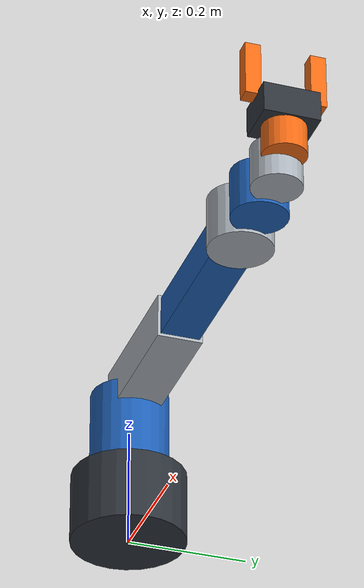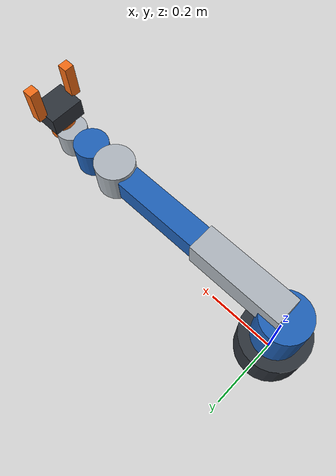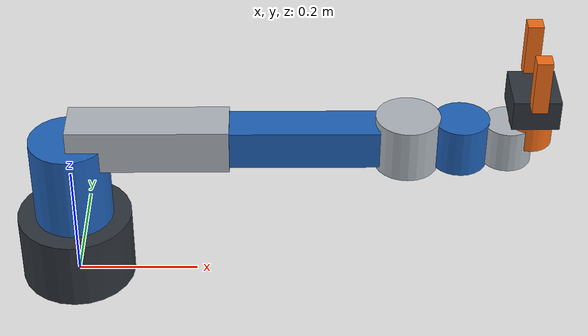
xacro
<?xml version="1.0"?>
<robot xmlns:xacro="http://www.ros.org/wiki/xacro" name="generic_6dof_arm_with_gripper">
    <xacro:arg name="initial_positions_file" default="initial_positions.yaml" />

    <!-- Import generic_6dof_arm_with_gripper urdf file -->
    <xacro:include filename="$(find robot_arm_description)/urdf/generic_6dof_arm_with_gripper.urdf" />

    <!-- Import control_xacro -->
    <xacro:include filename="generic_6dof_arm_with_gripper.ros2_control.xacro" />

    <xacro:generic_6dof_arm_with_gripper_ros2_control name="FakeSystem" initial_positions_file="$(arg initial_positions_file)"/>

</robot>

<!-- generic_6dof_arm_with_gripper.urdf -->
<robot name="generic_6dof_arm_with_gripper">

  <!-- Generic educational model. Units: meters, kilograms, radians.
       Geometry is primitive-based, so no external mesh files are required. -->

  <material name="dark_grey"><color rgba="0.18 0.20 0.23 1.0"/></material>
  <material name="blue"><color rgba="0.12 0.38 0.72 1.0"/></material>
  <material name="light_grey"><color rgba="0.68 0.71 0.74 1.0"/></material>
  <material name="orange"><color rgba="0.95 0.42 0.08 1.0"/></material>

  <link name="base_link">
    <inertial>
      <origin xyz="0 0 0.06"/>
      <mass value="4.0"/>
      <inertia ixx="0.018" ixy="0" ixz="0" iyy="0.018" iyz="0" izz="0.025"/>
    </inertial>
    <visual>
      <origin xyz="0 0 0.06"/>
      <geometry><cylinder radius="0.095" length="0.12"/></geometry>
      <material name="dark_grey"/>
    </visual>
    <collision>
      <origin xyz="0 0 0.06"/>
      <geometry><cylinder radius="0.095" length="0.12"/></geometry>
    </collision>
  </link>

  <link name="link_1">
    <inertial>
      <origin xyz="0 0 0.075"/>
      <mass value="2.2"/>
      <inertia ixx="0.012" ixy="0" ixz="0" iyy="0.012" iyz="0" izz="0.008"/>
    </inertial>
    <visual>
      <origin xyz="0 0 0.075"/>
      <geometry><cylinder radius="0.065" length="0.15"/></geometry>
      <material name="blue"/>
    </visual>
    <collision>
      <origin xyz="0 0 0.075"/>
      <geometry><cylinder radius="0.065" length="0.15"/></geometry>
    </collision>
  </link>

  <joint name="joint_1" type="revolute">
    <parent link="base_link"/><child link="link_1"/>
    <origin xyz="0 0 0.12"/><axis xyz="0 0 1"/>
    <limit lower="-3.14159" upper="3.14159" effort="80" velocity="2.0"/>
    <dynamics damping="0.2" friction="0.05"/>
  </joint>

  <link name="link_2">
    <inertial>
      <origin xyz="0.13 0 0"/>
      <mass value="3.0"/>
      <inertia ixx="0.010" ixy="0" ixz="0" iyy="0.030" iyz="0" izz="0.028"/>
    </inertial>
    <visual>
      <origin xyz="0.13 0 0"/>
      <geometry><box size="0.26 0.075 0.075"/></geometry>
      <material name="light_grey"/>
    </visual>
    <collision>
      <origin xyz="0.13 0 0"/>
      <geometry><box size="0.26 0.075 0.075"/></geometry>
    </collision>
  </link>

  <joint name="joint_2" type="revolute">
    <parent link="link_1"/><child link="link_2"/>
    <origin xyz="0 0 0.15"/><axis xyz="0 1 0"/>
    <limit lower="-2.2" upper="2.2" effort="80" velocity="2.0"/>
    <dynamics damping="0.2" friction="0.05"/>
  </joint>

  <link name="link_3">
    <inertial>
      <origin xyz="0.12 0 0"/>
      <mass value="2.2"/>
      <inertia ixx="0.007" ixy="0" ixz="0" iyy="0.018" iyz="0" izz="0.017"/>
    </inertial>
    <visual>
      <origin xyz="0.12 0 0"/>
      <geometry><box size="0.24 0.065 0.065"/></geometry>
      <material name="blue"/>
    </visual>
    <collision>
      <origin xyz="0.12 0 0"/>
      <geometry><box size="0.24 0.065 0.065"/></geometry>
    </collision>
  </link>

  <joint name="joint_3" type="revolute">
    <parent link="link_2"/><child link="link_3"/>
    <origin xyz="0.26 0 0"/><axis xyz="0 1 0"/>
    <limit lower="-2.6" upper="2.6" effort="55" velocity="2.2"/>
    <dynamics damping="0.15" friction="0.04"/>
  </joint>

  <link name="link_4">
    <inertial>
      <origin xyz="0.045 0 0"/>
      <mass value="1.1"/>
      <inertia ixx="0.003" ixy="0" ixz="0" iyy="0.004" iyz="0" izz="0.004"/>
    </inertial>
    <visual>
      <origin xyz="0.045 0 0"/>
      <geometry><cylinder radius="0.052" length="0.09"/></geometry>
      <material name="light_grey"/>
    </visual>
    <collision>
      <origin xyz="0.045 0 0"/>
      <geometry><cylinder radius="0.052" length="0.09"/></geometry>
    </collision>
  </link>

  <joint name="joint_4" type="revolute">
    <parent link="link_3"/><child link="link_4"/>
    <origin xyz="0.24 0 0"/><axis xyz="1 0 0"/>
    <limit lower="-3.14159" upper="3.14159" effort="35" velocity="2.8"/>
    <dynamics damping="0.1" friction="0.03"/>
  </joint>

  <link name="link_5">
    <inertial>
      <origin xyz="0.04 0 0"/>
      <mass value="0.9"/>
      <inertia ixx="0.0025" ixy="0" ixz="0" iyy="0.003" iyz="0" izz="0.003"/>
    </inertial>
    <visual>
      <origin xyz="0.04 0 0"/>
      <geometry><cylinder radius="0.045" length="0.08"/></geometry>
      <material name="blue"/>
    </visual>
    <collision>
      <origin xyz="0.04 0 0"/>
      <geometry><cylinder radius="0.045" length="0.08"/></geometry>
    </collision>
  </link>

  <joint name="joint_5" type="revolute">
    <parent link="link_4"/><child link="link_5"/>
    <origin xyz="0.09 0 0"/><axis xyz="0 1 0"/>
    <limit lower="-2.2" upper="2.2" effort="30" velocity="2.8"/>
    <dynamics damping="0.1" friction="0.03"/>
  </joint>

  <link name="link_6">
    <inertial>
      <origin xyz="0.035 0 0"/>
      <mass value="0.65"/>
      <inertia ixx="0.0015" ixy="0" ixz="0" iyy="0.002" iyz="0" izz="0.002"/>
    </inertial>
    <visual>
      <origin xyz="0.035 0 0"/>
      <geometry><cylinder radius="0.04" length="0.07"/></geometry>
      <material name="light_grey"/>
    </visual>
    <collision>
      <origin xyz="0.035 0 0"/>
      <geometry><cylinder radius="0.04" length="0.07"/></geometry>
    </collision>
  </link>

  <joint name="joint_6" type="revolute">
    <parent link="link_5"/><child link="link_6"/>
    <origin xyz="0.08 0 0"/><axis xyz="1 0 0"/>
    <limit lower="-3.14159" upper="3.14159" effort="20" velocity="3.0"/>
    <dynamics damping="0.08" friction="0.02"/>
  </joint>

  <link name="tool0">
    <inertial>
      <origin xyz="0 0 0.025"/>
      <mass value="0.25"/>
      <inertia ixx="0.0003" ixy="0" ixz="0" iyy="0.0003" iyz="0" izz="0.0002"/>
    </inertial>
    <visual>
      <origin xyz="0 0 0.025"/>
      <geometry><cylinder radius="0.035" length="0.05"/></geometry>
      <material name="orange"/>
    </visual>
    <collision>
      <origin xyz="0 0 0.025"/>
      <geometry><cylinder radius="0.035" length="0.05"/></geometry>
    </collision>
  </link>

  <joint name="tool0_fixed_joint" type="fixed">
    <parent link="link_6"/><child link="tool0"/>
    <origin xyz="0.07 0 0" rpy="0 0 0"/>
  </joint>

  <!-- Parallel gripper: two opposed prismatic fingers.
       Positive finger travel is along each finger's local +Y axis. -->
  <link name="gripper_base">
    <inertial>
      <origin xyz="0 0 0.025"/>
      <mass value="0.18"/>
      <inertia ixx="0.0002" ixy="0" ixz="0" iyy="0.0002" iyz="0" izz="0.00015"/>
    </inertial>
    <visual>
      <origin xyz="0 0 0.025"/>
      <geometry><box size="0.075 0.09 0.05"/></geometry>
      <material name="dark_grey"/>
    </visual>
    <collision>
      <origin xyz="0 0 0.025"/>
      <geometry><box size="0.075 0.09 0.05"/></geometry>
    </collision>
  </link>

  <joint name="gripper_base_joint" type="fixed">
    <parent link="tool0"/><child link="gripper_base"/>
    <origin xyz="0 0 0.05"/>
  </joint>

  <link name="left_finger">
    <inertial>
      <origin xyz="0 0 0.045"/>
      <mass value="0.06"/>
      <inertia ixx="0.00005" ixy="0" ixz="0" iyy="0.00005" iyz="0" izz="0.00001"/>
    </inertial>
    <visual>
      <origin xyz="0 0 0.045"/>
      <geometry><box size="0.025 0.025 0.09"/></geometry>
      <material name="orange"/>
    </visual>
    <collision>
      <origin xyz="0 0 0.045"/>
      <geometry><box size="0.025 0.025 0.09"/></geometry>
    </collision>
  </link>

  <joint name="left_finger_joint" type="prismatic">
    <parent link="gripper_base"/><child link="left_finger"/>
    <origin xyz="0 0.052 0.045"/><axis xyz="0 1 0"/>
    <limit lower="0" upper="0.025" effort="15" velocity="0.05"/>
    <dynamics damping="0.1" friction="0.02"/>
  </joint>

  <link name="right_finger">
    <inertial>
      <origin xyz="0 0 0.045"/>
      <mass value="0.06"/>
      <inertia ixx="0.00005" ixy="0" ixz="0" iyy="0.00005" iyz="0" izz="0.00001"/>
    </inertial>
    <visual>
      <origin xyz="0 0 0.045"/>
      <geometry><box size="0.025 0.025 0.09"/></geometry>
      <material name="orange"/>
    </visual>
    <collision>
      <origin xyz="0 0 0.045"/>
      <geometry><box size="0.025 0.025 0.09"/></geometry>
      <material name="orange"/>
    </collision>
  </link>

  <joint name="right_finger_joint" type="prismatic">
    <parent link="gripper_base"/><child link="right_finger"/>
    <origin xyz="0 -0.052 0.045"/><axis xyz="0 -1 0"/>
    <limit lower="0" upper="0.025" effort="15" velocity="0.05"/>
    <dynamics damping="0.1" friction="0.02"/>
    <mimic joint="left_finger_joint" multiplier="1" offset="0"/>
  </joint>

  <link name="gripper_tcp"/>
  <joint name="gripper_tcp_joint" type="fixed">
    <parent link="gripper_base"/><child link="gripper_tcp"/>
    <origin xyz="0 0 0.10"/>
  </joint>

</robot>
